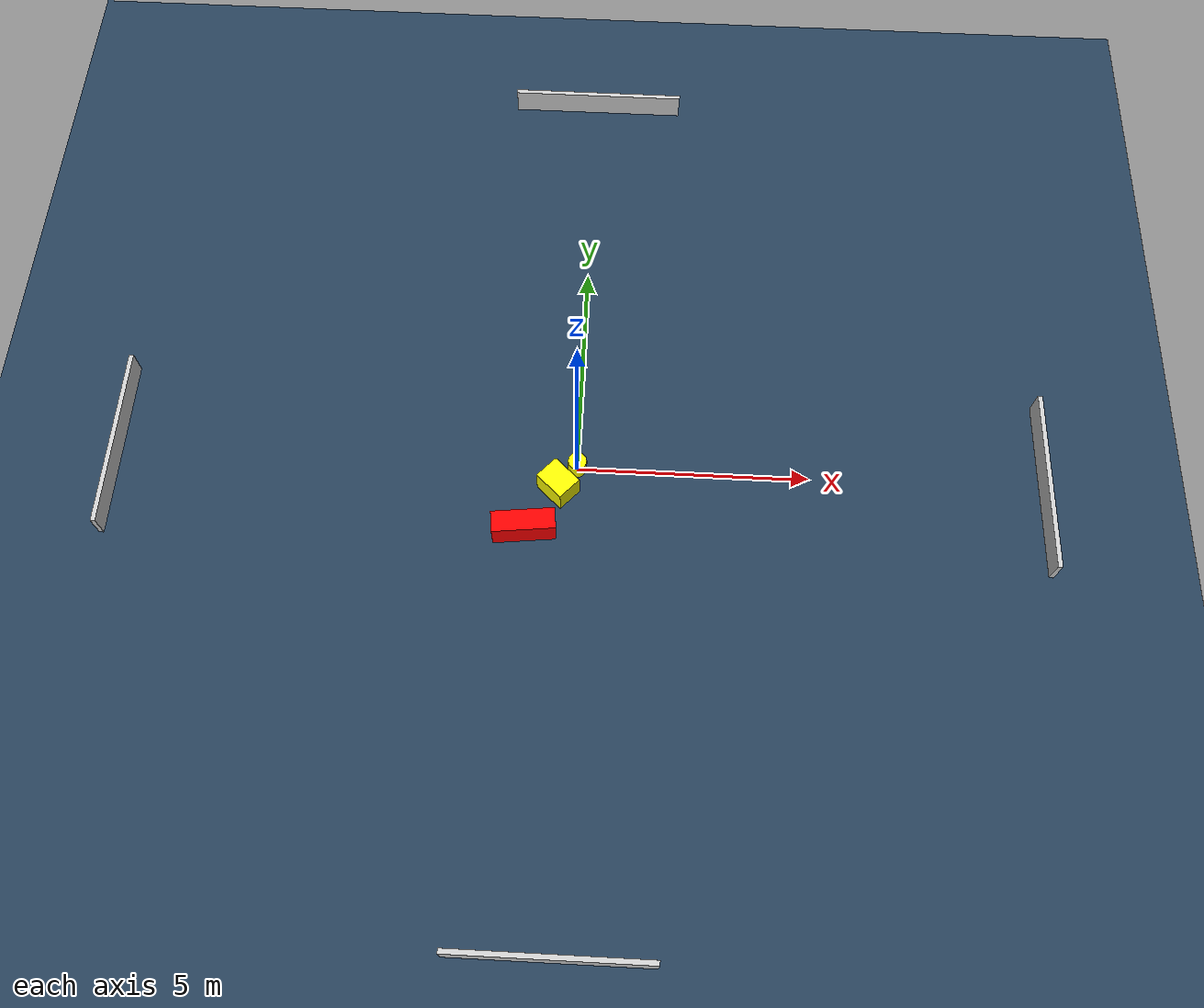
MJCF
<?xml version="1.0" ?>
<mujoco model="generated_environment">
  <option timestep="0.01" integrator="RK4" cone="elliptic"/>
  <default>
    <geom density="1"/>
  </default>
  <asset>
    <texture builtin="gradient" height="3072" name="skybox" rgb1="0.3 0.5 0.7" rgb2="0 0 0" type="skybox" width="512"/>
    <texture builtin="checker" height="300" name="groundplane" rgb1="0.2 0.3 0.4" rgb2="0.1 0.2 0.3" type="2d" width="300"/>
    <material name="groundplane" reflectance="0.2" texrepeat="5 5" texture="groundplane"/>
  </asset>
  <worldbody>
    <light dir="0 0 -1" directional="true" pos="0 0 1.5"/>
    <geom condim="3" friction="0.5 0.005 0.001" material="groundplane" name="floor" pos="0 0 0" size="0 0 0.05" type="plane"/>
    <body name="walls">
      <geom name="wall_1" condim="4" pos="-10.0 0.0 0.3" rgba="0.800000011920929 0.800000011920929 0.800000011920929 1.0" size="0.05 2.0 0.3" type="box"/>
      <geom name="wall_2" condim="4" pos="10.0 0.0 0.3" rgba="0.800000011920929 0.800000011920929 0.800000011920929 1.0" size="0.05 2.0 0.3" type="box"/>
      <geom name="wall_3" condim="4" pos="0.0 -10.0 0.3" rgba="0.800000011920929 0.800000011920929 0.800000011920929 1.0" size="2.0 0.05 0.3" type="box"/>
      <geom name="wall_4" condim="4" pos="0.0 10.0 0.3" rgba="0.800000011920929 0.800000011920929 0.800000011920929 1.0" size="2.0 0.05 0.3" type="box"/>
    </body>
    <body name="robot">
      <joint name="joint_x" type="slide" pos="0 0 0" axis="1 0 0"/>
      <joint name="joint_y" type="slide" pos="0 0 0" axis="0 1 0"/>
      <geom name="robot" type="cylinder" pos="0.0 0.0 0.2" size="0.2 0.2 0.0" mass="5.0" friction="1.0 0.005 0.0001" condim="4" rgba="1.0 1.0 0.0 1.0"/>
    </body>
    <body name="obstacle_1_movable">
      <geom name="obstacle_1_movable" condim="4" pos="-0.38545698449288956 -0.505486189137341 0.3" euler="0 0 137.2756265087598" friction="0.0 0.005 0.001" rgba="1.0 1.0 0.0 1.0" size="0.3591586036186374 0.286173973704817 0.3" type="box" mass="0.1"/>
      <joint type="free"/>
    </body>
    <body name="obstacle_2_static">
      <geom name="obstacle_2_static" condim="4" pos="-1.0565835263336594 -1.5093059034801548 0.3" euler="0 0 186.550448219799" friction="0.0 0.005 0.001" rgba="1.0 0.0 0.0 1.0" size="0.6734414041022342 0.23235968715448482 0.3" type="box"/>
    </body>
  </worldbody>
  <actuator>
    <motor name="actuator_x" joint="joint_x" gear="1" ctrlrange="-1 1"/>
    <motor name="actuator_y" joint="joint_y" gear="1" ctrlrange="-1 1"/>
  </actuator>
</mujoco>
